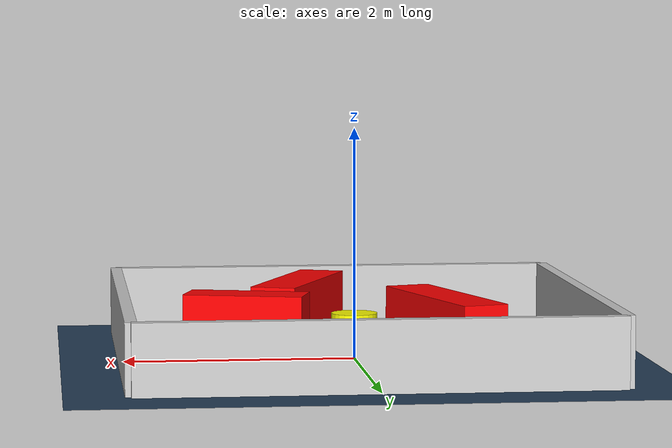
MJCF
<?xml version="1.0" ?>
<mujoco model="generated_environment">
  <option timestep="0.01" integrator="RK4" cone="elliptic"/>
  <default>
    <geom density="1"/>
  </default>
  <asset>
    <texture builtin="gradient" height="3072" rgb1="0.3 0.5 0.7" rgb2="0 0 0" type="skybox" width="512"/>
    <texture builtin="checker" height="300" mark="edge" markrgb="0.8 0.8 0.8" name="groundplane" rgb1="0.2 0.3 0.4" rgb2="0.1 0.2 0.3" type="2d" width="300"/>
    <material name="groundplane" reflectance="0.2" texrepeat="5 5" texture="groundplane" texuniform="true"/>
    <material name="robot" rgba="0.0 1.0 0.0 1"/>
  </asset>
  <worldbody>
    <light dir="0 0 -1" directional="true" pos="0 0 1.5"/>
    <geom condim="4" friction="1.0 0.005 0.001" material="groundplane" name="floor" size="0 0 0.05" type="plane"/>
    <body name="walls">
      <geom name="wall_1" condim="4" pos="-2.0 0.0 0.3" rgba="0.800000011920929 0.800000011920929 0.800000011920929 1.0" size="0.05 2.0 0.3" type="box"/>
      <geom name="wall_2" condim="4" pos="2.0 0.0 0.3" rgba="0.800000011920929 0.800000011920929 0.800000011920929 1.0" size="0.05 2.0 0.3" type="box"/>
      <geom name="wall_3" condim="4" pos="0.0 -2.0 0.3" rgba="0.800000011920929 0.800000011920929 0.800000011920929 1.0" size="2.0 0.05 0.3" type="box"/>
      <geom name="wall_4" condim="4" pos="0.0 2.0 0.3" rgba="0.800000011920929 0.800000011920929 0.800000011920929 1.0" size="2.0 0.05 0.3" type="box"/>
    </body>
    <body name="robot">
      <joint name="joint_x" type="slide" pos="0 0 0" axis="1 0 0"/>
      <joint name="joint_y" type="slide" pos="0 0 0" axis="0 1 0"/>
      <geom name="robot" type="sphere" pos="0.3 0.0 0.2" size="0.05" mass="5." friction="1.0 0.005 0.0001" condim="4" rgba="0.5 0.5 0.5 1.0"/>
      <site name="sensor_ball"/>
    </body>
    <body name="obstacle_movable_1">
      <geom name="obstacle_movable_1" condim="4" pos="0.0 0.0 0.2" euler="0 0 0.0" friction="1.0 0.005 0.001" rgba="1.0 1.0 0.0 1.0" size="0.2 0.2 0.0" type="cylinder" mass="0.1"/>
      <joint type="free"/>
    </body>
    <body name="obstacle_2_static">
      <geom name="obstacle_2_static" condim="4" pos="0.9476140538031232 0.1518132627638482 0.3" euler="0 0 344.2567972293516" friction="1.0 0.005 0.001" rgba="1 0 0 1" size="0.516128730657883 0.2 0.3" type="box"/>
    </body>
    <body name="obstacle_3_static">
      <geom name="obstacle_3_static" condim="4" pos="-0.7315162921765136 0.44859306886399675 0.3" euler="0 0 286.78186247687137" friction="1.0 0.005 0.001" rgba="1 0 0 1" size="0.8009630413855764 0.2 0.3" type="box"/>
    </body>
    <body name="obstacle_4_static">
      <geom name="obstacle_4_static" condim="4" pos="0.40612778670791205 -0.9130028726233911 0.3" euler="0 0 67.11078192672318" friction="1.0 0.005 0.001" rgba="1 0 0 1" size="0.7294081020856424 0.2 0.3" type="box"/>
    </body>
  </worldbody>
  <actuator>
    <motor name="actuator_x" joint="joint_x" gear="1" ctrlrange="-1 1"/>
    <motor name="actuator_y" joint="joint_y" gear="1" ctrlrange="-1 1"/>
  </actuator>
</mujoco>
